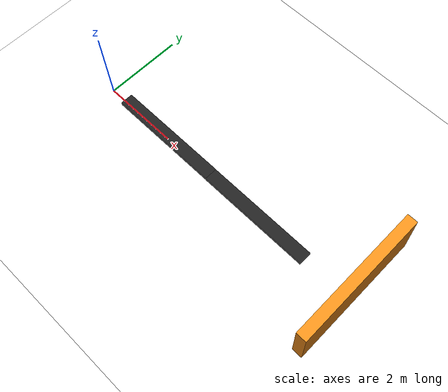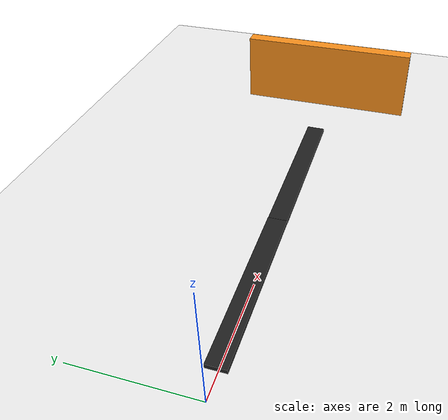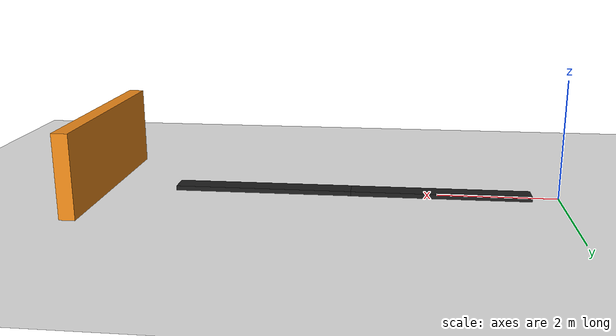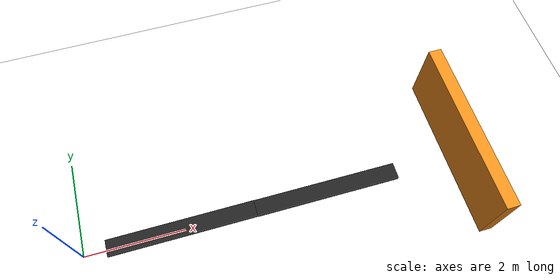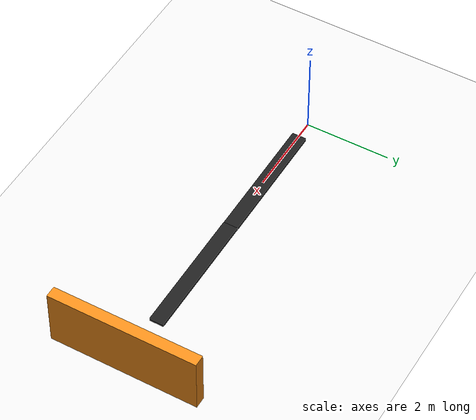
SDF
<sdf version="1.6">
 <world name="default">
  <light name="sun" type="directional">
   <pose>0 0 10 0 -0 0</pose>
   <diffuse>0.8 0.8 0.8 1</diffuse>
   <specular>0.1 0.1 0.1 1</specular>
   <attenuation>
    <range>1000</range>
    <constant>0.9</constant>
    <linear>0.01</linear>
    <quadratic>0.001</quadratic>
   </attenuation>
   <direction>-0.5 0.5 -1</direction>
  </light>
  <model name="ground_plane">
   <static>1</static>
   <link name="link">
    <collision name="collision">
     <geometry><plane><normal>0 0 1</normal><size>100 100</size></plane></geometry>
     <surface><friction><ode><mu>100</mu><mu2>50</mu2></ode></friction></surface>
    </collision>
    <visual name="visual">
     <cast_shadows>0</cast_shadows>
     <geometry><plane><normal>0 0 1</normal><size>100 100</size></plane></geometry>
     <material>
      <script><uri>file://media/materials/scripts/gazebo.material</uri><name>Gazebo/White</name></script>
     </material>
    </visual>
   </link>
  </model>
  <gravity>0 0 -9.8</gravity>
  <magnetic_field>6e-06 2.3e-05 -4.2e-05</magnetic_field>
  <atmosphere type="adiabatic"/>
  <physics name="default_physics" default="0" type="ode">
   <max_step_size>0.001</max_step_size>
   <real_time_factor>1</real_time_factor>
   <real_time_update_rate>1000</real_time_update_rate>
  </physics>
  <scene><ambient>0.4 0.4 0.4 1</ambient><background>0.7 0.7 0.7 1</background><shadows>1</shadows></scene>
  <spherical_coordinates>
   <surface_model>EARTH_WGS84</surface_model>
   <latitude_deg>0</latitude_deg>
   <longitude_deg>0</longitude_deg>
   <elevation>0</elevation>
   <heading_deg>0</heading_deg>
  </spherical_coordinates>
  <model name="unit_box_0">
   <pose>1.95714 0.037438 0.038541 1e-06 0.000271 0.000697</pose>
   <link name="unit_box_0::link">
    <inertial>
     <mass>1</mass>
     <inertia>
      <ixx>0.166667</ixx>
      <ixy>0</ixy>
      <ixz>0</ixz>
      <iyy>0.166667</iyy>
      <iyz>0</iyz>
      <izz>0.166667</izz>
     </inertia>
    </inertial>
    <collision name="collision"><geometry><box><size>3.00524 0.33254 0.077896</size></box></geometry></collision>
    <visual name="visual">
     <geometry><box><size>3.00524 0.33254 0.077896</size></box></geometry>
     <material>
      <script><name>Gazebo/Black</name><uri>file://media/materials/scripts/gazebo.material</uri></script>
     </material>
    </visual>
   </link>
  </model>
  <model name="unit_box_0_clone">
   <pose>4.96302 0.034637 0.038541 -1e-06 0.000271 0.000307</pose>
   <link name="unit_box_0::link">
    <inertial>
     <mass>1</mass>
     <inertia>
      <ixx>0.166667</ixx>
      <ixy>0</ixy>
      <ixz>0</ixz>
      <iyy>0.166667</iyy>
      <iyz>0</iyz>
      <izz>0.166667</izz>
     </inertia>
    </inertial>
    <collision name="collision"><geometry><box><size>3.00524 0.33254 0.077896</size></box></geometry></collision>
    <visual name="visual">
     <geometry><box><size>3.00524 0.33254 0.077896</size></box></geometry>
     <material>
      <script><name>Gazebo/Black</name><uri>file://media/materials/scripts/gazebo.material</uri></script>
     </material>
    </visual>
   </link>
  </model>
  <model name="unit_box_1">
   <pose>7.7293 0.10189 0.688319 0.000147 -6e-06 0.002962</pose>
   <link name="link">
    <inertial>
     <mass>1</mass>
     <inertia>
      <ixx>0.166667</ixx>
      <ixy>0</ixy>
      <ixz>0</ixz>
      <iyy>0.166667</iyy>
      <iyz>0</iyz>
      <izz>0.166667</izz>
     </inertia>
    </inertial>
    <collision name="collision"><geometry><box><size>0.262394 3.45265 1.37714</size></box></geometry></collision>
    <visual name="visual">
     <geometry><box><size>0.262394 3.45265 1.37714</size></box></geometry>
     <material>
      <script><name>Gazebo/Orange</name><uri>file://media/materials/scripts/gazebo.material</uri></script>
     </material>
    </visual>
   </link>
  </model>
 </world>
</sdf>
